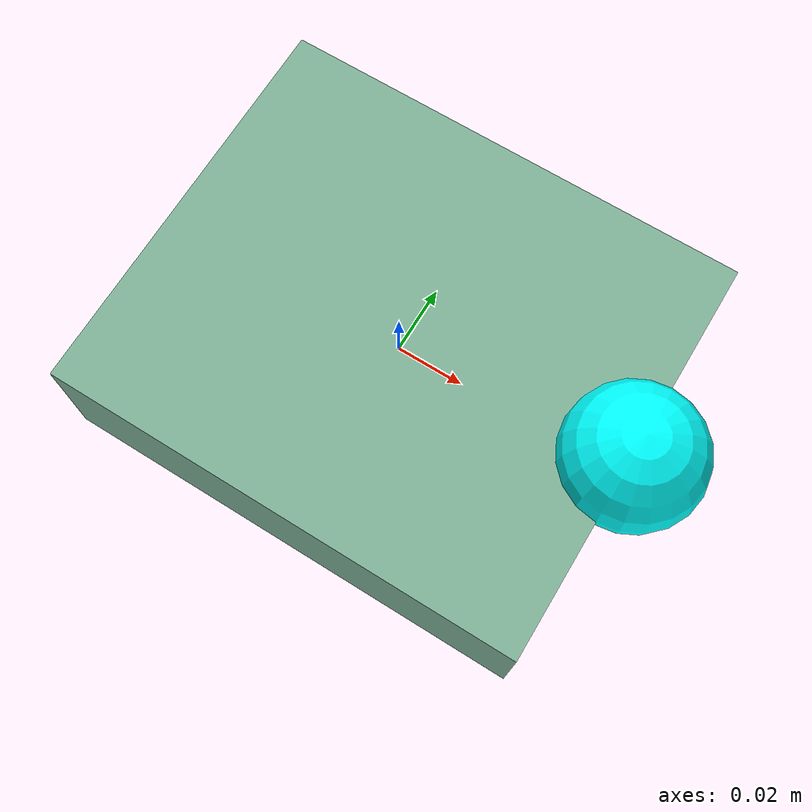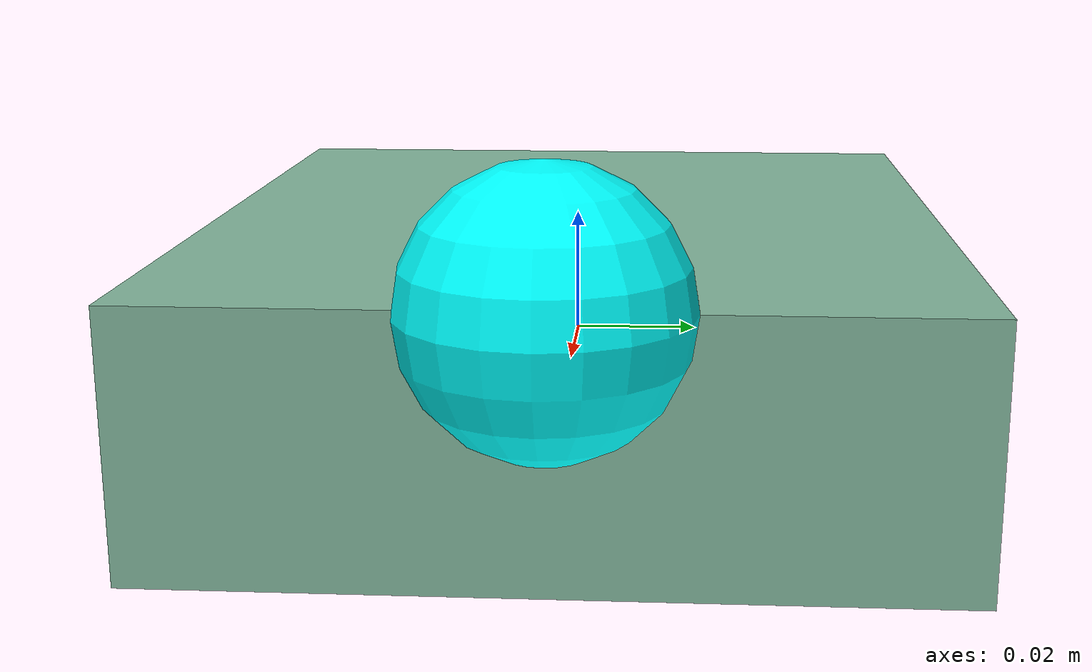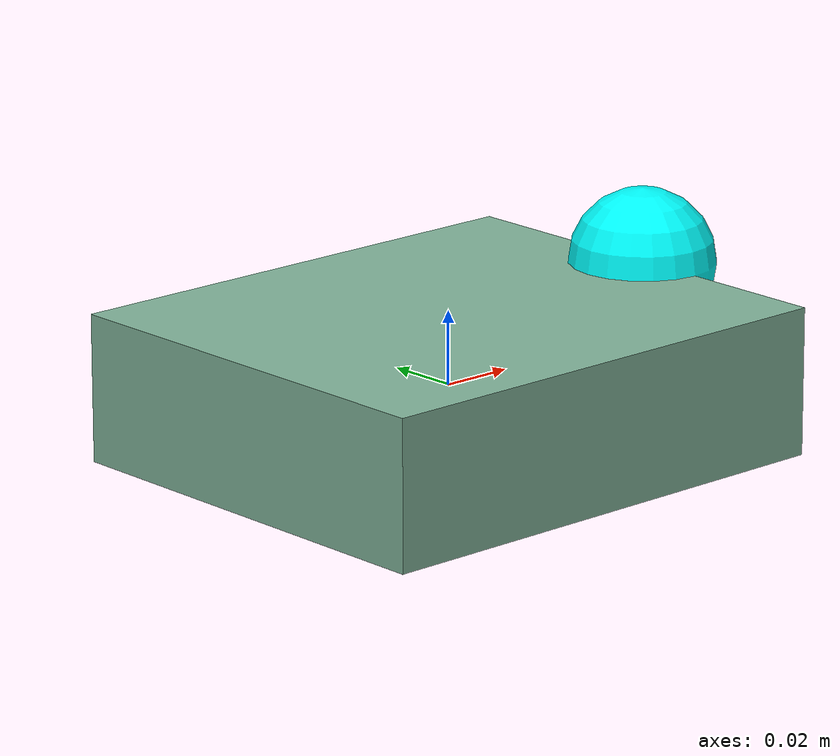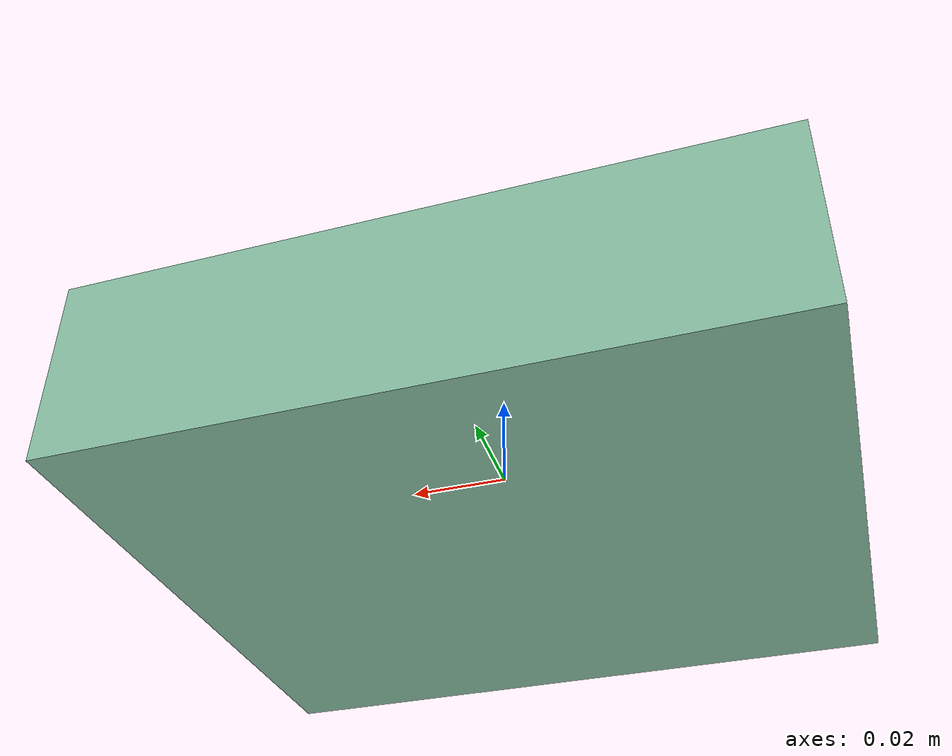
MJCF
<mujoco model="simple box">
    <visual>
    <global offheight="2200" offwidth="3208"/>
  </visual>

    <option timestep="0.0005" cone="elliptic"/>

    <default>
        <general ctrllimited="true" ctrlrange="-1 1" gainprm="18"/>
    </default>

    <worldbody>
        <body name="box">
            <camera name="top" mode="trackcom" fovy="80" pos="0 0 1" zaxis="0 0 1"/>
            <light name="tracking_light" mode="trackcom" pos="0 0 3"/>
            <camera name="side_alt" mode="trackcom" pos="0.7 -0.761 0.399" xyaxes="0.766 0.643 0 -0.162 0.192 0.968"/>
            <joint name="slide_x" type="slide" damping="0.3" axis="1 0 0"/>
            <joint name="slide_y" type="slide" damping="0.3" axis="0 1 0"/>
            <joint name="slide_z" type="slide" damping="0.3" axis="0 0 1"/>
            <joint name="hinge" type="hinge" damping="0.4" axis="0 0 1"/>
            <site name="root"/>
            <camera name="egocentric" pos="0 0 0.1" xyaxes="0 -1 0 0 0 1"/>
            <geom name="torso" type="box" size=".07 .06 .02" rgba=".5 .7 .6 1"  mass=".7"/>
            <geom name="head" type="sphere" pos=".07 0 0.02" size="0.02" rgba="0 1 1 1" mass="0"/>
        </body>
    </worldbody>

    <actuator>
        <general name="forward" site="root" gainprm="17" gear="1 0 0 0 0 0"/>
        <general name="rotate" site="root" gainprm="2" gear="0 0 0 0 0 1"/>
    </actuator>

    <sensor>
        <accelerometer name="accelerometer" site="root"/>
        <gyro name="gyro" site="root"/>
        <velocimeter name="velocimeter" site="root"/>
    </sensor>

</mujoco>
